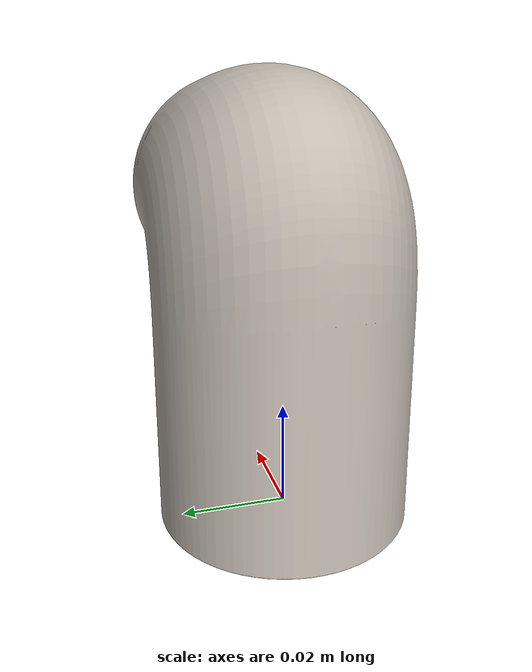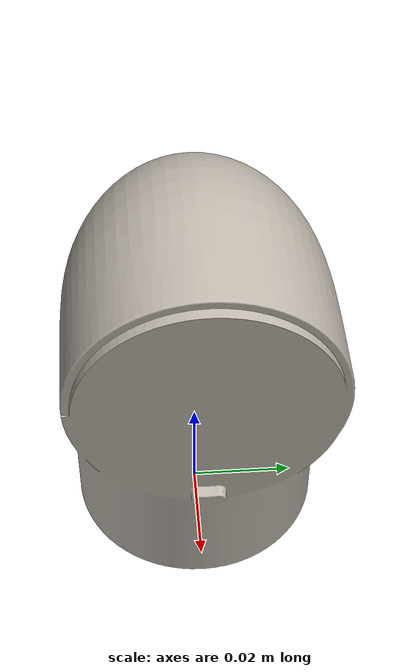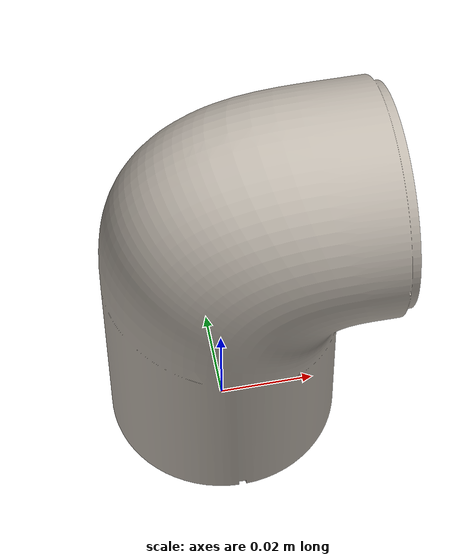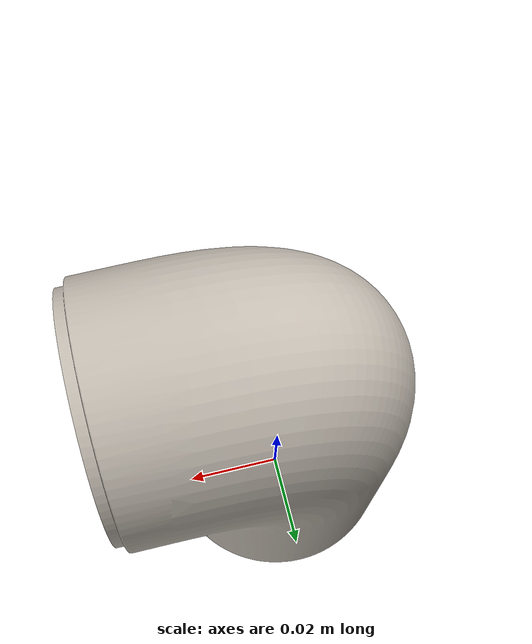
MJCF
<mujoco model="link2">
  <default>
    <default class="visual">
      <geom group="2" type="mesh" contype="0" conaffinity="0"/>
    </default>
    <default class="collision">
      <geom group="3" type="mesh"/>
    </default>
  </default>
  <asset>
    <texture type="2d" name="link2" file="link2.png"/>
    <material name="material0.001" texture="link2" specular="0.0" shininess="0.25"/>
    <mesh file="link2.obj"/>
  </asset>
  <worldbody>
    <body name="link2">
      <geom material="material0.001" mesh="link2" class="visual"/>
      <geom mesh="link2" class="collision"/>
    </body>
  </worldbody>
</mujoco>
